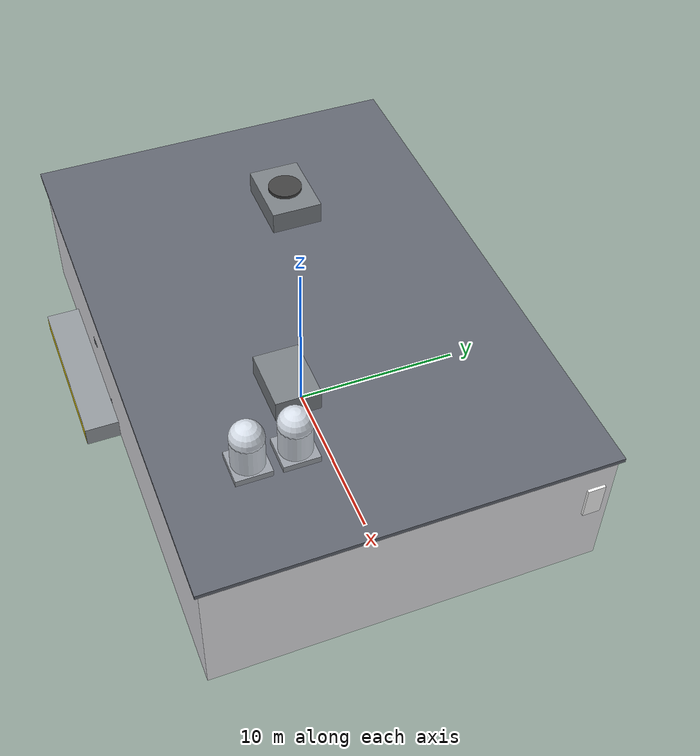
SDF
<?xml version="1.0" ?>
<sdf version="1.8">
  <model name="px_mart_store">
    <static>true</static>
    <link name="pxmart_link">

      <!-- ==================== 物理碰撞剛體 (Decoupled Primitives) ==================== -->
      <!-- 主建物量體剛體 (32m x 22m x 8.0m) -->
      <collision name="building_col">
        <pose>0 0 4.0 0 0 0</pose>
        <geometry><box><size>32.0 22.0 8.0</size></box></geometry>
      </collision>
      <!-- 門前雨遮剛體 -->
      <collision name="canopy_col">
        <pose>0 11.8 3.5 0 0 0</pose>
        <geometry><box><size>16.0 2.2 0.3</size></box></geometry>
      </collision>
      <!-- 後方貨物裝卸月台剛體 -->
      <collision name="dock_col">
        <pose>-6.0 -11.8 0.6 0 0 0</pose>
        <geometry><box><size>10.0 2.4 1.2</size></box></geometry>
      </collision>

      <!-- ==================== 視覺主體：全聯現代雙層商場建築 ==================== -->
      <!-- 主建築白色微紋理外牆 -->
      <visual name="building_walls">
        <pose>0 0 4.0 0 0 0</pose>
        <geometry><box><size>32.0 22.0 8.0</size></box></geometry>
        <material>
          <ambient>0.88 0.88 0.90 1</ambient>
          <diffuse>0.92 0.92 0.94 1</diffuse>
        </material>
      </visual>

      <!-- 頂樓微凸的女兒牆邊緣 (Roof Parapet Cap) -->
      <visual name="roof_parapet">
        <pose>0 0 8.1 0 0 0</pose>
        <geometry><box><size>32.4 22.4 0.25</size></box></geometry>
        <material>
          <ambient>0.3 0.32 0.35 1</ambient>
          <diffuse>0.38 0.40 0.44 1</diffuse>
        </material>
      </visual>

      <!-- ==================== 全聯福利中心 台灣特色高清擬真店招與門面 (Photo-Real PBR Signboards) ==================== -->
      <!-- 1. 正面橫式發光主招牌 (Fascia Signboard: 24.0m x 2.4m, 比例 10.0:1 完全吻合 1600x160 貼圖) -->
      <visual name="pxmart_fascia_vis">
        <pose>0 11.08 5.6 0 0 0</pose>
        <geometry><box><size>24.0 0.14 2.4</size></box></geometry>
        <material>
          <diffuse>1 1 1 1</diffuse>
          <emissive>0.45 0.45 0.45 1</emissive>
          <pbr>
            <metal>
              <albedo_map>model://px_mart_store/materials/textures/pxmart_fascia_sign.png</albedo_map>
              <roughness>0.20</roughness>
              <metalness>0.05</metalness>
            </metal>
          </pbr>
        </material>
      </visual>

      <!-- 2. 超市 1F 落地採光大櫥窗與自動感應玻璃門 (Supermarket Glass Curtain) -->
      <visual name="pxmart_entrance_glass">
        <pose>0 11.04 1.7 0 0 0</pose>
        <geometry><box><size>20.0 0.08 3.4</size></box></geometry>
        <material>
          <ambient>0.2 0.32 0.42 0.85</ambient>
          <diffuse>0.28 0.42 0.52 0.85</diffuse>
          <specular>0.9 0.95 1.0 1</specular>
        </material>
      </visual>

      <!-- 3. 側懸垂直雙面發光店招 (Protruding Blade Signboard: 1.0m x 2.0m, 比例 1:2 完全吻合 512x1024 貼圖) -->
      <visual name="pxmart_blade_sign">
        <pose>16.08 10.0 5.2 0 0 1.5708</pose>
        <geometry><box><size>1.0 0.16 2.0</size></box></geometry>
        <material>
          <diffuse>1 1 1 1</diffuse>
          <emissive>0.50 0.50 0.50 1</emissive>
          <pbr>
            <metal>
              <albedo_map>model://px_mart_store/materials/textures/pxmart_blade_sign.png</albedo_map>
              <roughness>0.20</roughness>
              <metalness>0.05</metalness>
            </metal>
          </pbr>
        </material>
      </visual>

      <!-- 挑出式深灰色進口懸挑雨遮 (Steel Entrance Canopy: 16m x 2.2m) -->
      <visual name="entrance_canopy">
        <pose>0 11.8 3.5 0 0 0</pose>
        <geometry><box><size>16.0 2.2 0.25</size></box></geometry>
        <material>
          <ambient>0.25 0.26 0.28 1</ambient>
          <diffuse>0.30 0.32 0.34 1</diffuse>
        </material>
      </visual>

      <!-- 雨遮支撐不銹鋼拉桿 (Tension Rods) -->
      <visual name="canopy_rod_1"><pose>-6.5 11.4 4.3 0 0.45 0</pose><geometry><cylinder><radius>0.03</radius><length>1.8</length></cylinder></geometry><material><ambient>0.7 0.7 0.75 1</ambient><diffuse>0.85 0.85 0.9 1</diffuse></material></visual>
      <visual name="canopy_rod_2"><pose>6.5 11.4 4.3 0 -0.45 0</pose><geometry><cylinder><radius>0.03</radius><length>1.8</length></cylinder></geometry><material><ambient>0.7 0.7 0.75 1</ambient><diffuse>0.85 0.85 0.9 1</diffuse></material></visual>

      <!-- ==================== 門前不銹鋼手推車收納專區 (Shopping Cart Corral) ==================== -->
      <visual name="cart_shelter_roof">
        <pose>10.5 12.2 2.2 0 0 0</pose>
        <geometry><box><size>5.0 2.0 0.1</size></box></geometry>
        <material><ambient>0.3 0.32 0.35 1</ambient><diffuse>0.38 0.40 0.45 1</diffuse></material>
      </visual>
      <visual name="cart_shelter_post1"><pose>8.2 11.4 1.1 0 0 0</pose><geometry><cylinder><radius>0.04</radius><length>2.2</length></cylinder></geometry><material><ambient>0.7 0.7 0.75 1</ambient><diffuse>0.85 0.85 0.9 1</diffuse></material></visual>
      <visual name="cart_shelter_post2"><pose>12.8 11.4 1.1 0 0 0</pose><geometry><cylinder><radius>0.04</radius><length>2.2</length></cylinder></geometry><material><ambient>0.7 0.7 0.75 1</ambient><diffuse>0.85 0.85 0.9 1</diffuse></material></visual>
      <visual name="cart_shelter_post3"><pose>8.2 13.0 1.1 0 0 0</pose><geometry><cylinder><radius>0.04</radius><length>2.2</length></cylinder></geometry><material><ambient>0.7 0.7 0.75 1</ambient><diffuse>0.85 0.85 0.9 1</diffuse></material></visual>
      <visual name="cart_shelter_post4"><pose>12.8 13.0 1.1 0 0 0</pose><geometry><cylinder><radius>0.04</radius><length>2.2</length></cylinder></geometry><material><ambient>0.7 0.7 0.75 1</ambient><diffuse>0.85 0.85 0.9 1</diffuse></material></visual>
      <!-- 排列整齊的購物手推車排 (Nested Carts) -->
      <visual name="px_carts_row1">
        <pose>10.5 11.9 0.45 0 0 0</pose>
        <geometry><box><size>4.2 0.45 0.75</size></box></geometry>
        <material><ambient>0.6 0.62 0.65 1</ambient><diffuse>0.75 0.78 0.8 1</diffuse></material>
      </visual>
      <visual name="px_carts_row1_handles">
        <pose>10.5 11.9 0.85 0 0 0</pose>
        <geometry><box><size>4.2 0.08 0.05</size></box></geometry>
        <material><ambient>0.85 0.1 0.1 1</ambient><diffuse>0.95 0.12 0.12 1</diffuse></material>
      </visual>
      <visual name="px_carts_row2">
        <pose>10.5 12.5 0.45 0 0 0</pose>
        <geometry><box><size>4.2 0.45 0.75</size></box></geometry>
        <material><ambient>0.6 0.62 0.65 1</ambient><diffuse>0.75 0.78 0.8 1</diffuse></material>
      </visual>
      <visual name="px_carts_row2_handles">
        <pose>10.5 12.5 0.85 0 0 0</pose>
        <geometry><box><size>4.2 0.08 0.05</size></box></geometry>
        <material><ambient>0.85 0.1 0.1 1</ambient><diffuse>0.95 0.12 0.12 1</diffuse></material>
      </visual>

      <!-- ==================== 門前不銹鋼防撞立柱 (Stainless Bollards) ==================== -->
      <visual name="bollard_1"><pose>-3.0 12.5 0.45 0 0 0</pose><geometry><cylinder><radius>0.08</radius><length>0.9</length></cylinder></geometry><material><ambient>0.7 0.7 0.75 1</ambient><diffuse>0.85 0.85 0.9 1</diffuse></material></visual>
      <visual name="bollard_2"><pose>-1.0 12.5 0.45 0 0 0</pose><geometry><cylinder><radius>0.08</radius><length>0.9</length></cylinder></geometry><material><ambient>0.7 0.7 0.75 1</ambient><diffuse>0.85 0.85 0.9 1</diffuse></material></visual>
      <visual name="bollard_3"><pose>1.0 12.5 0.45 0 0 0</pose><geometry><cylinder><radius>0.08</radius><length>0.9</length></cylinder></geometry><material><ambient>0.7 0.7 0.75 1</ambient><diffuse>0.85 0.85 0.9 1</diffuse></material></visual>
      <visual name="bollard_4"><pose>3.0 12.5 0.45 0 0 0</pose><geometry><cylinder><radius>0.08</radius><length>0.9</length></cylinder></geometry><material><ambient>0.7 0.7 0.75 1</ambient><diffuse>0.85 0.85 0.9 1</diffuse></material></visual>

      <!-- ==================== 後方生鮮與乾貨進貨卸貨專區 (Logistics Dock) ==================== -->
      <!-- 混凝土高架裝卸平台 (Dock Platform) -->
      <visual name="dock_platform">
        <pose>-6.0 -11.8 0.6 0 0 0</pose>
        <geometry><box><size>10.0 2.4 1.2</size></box></geometry>
        <material><ambient>0.5 0.52 0.55 1</ambient><diffuse>0.58 0.60 0.62 1</diffuse></material>
      </visual>
      <!-- 防撞黑黃斜紋警示邊 (Hazard Striping) -->
      <visual name="dock_edge_hazard">
        <pose>-6.0 -12.98 0.6 0 0 0</pose>
        <geometry><box><size>9.8 0.05 1.1</size></box></geometry>
        <material><ambient>0.9 0.8 0.05 1</ambient><diffuse>0.95 0.85 0.08 1</diffuse></material>
      </visual>
      <!-- 金屬工業電動捲門 (Roll-up Shutter Doors: 2 樘進貨門) -->
      <visual name="dock_shutter_1">
        <pose>-8.0 -10.95 2.5 0 0 0</pose>
        <geometry><box><size>3.2 0.1 3.0</size></box></geometry>
        <material><ambient>0.3 0.32 0.35 1</ambient><diffuse>0.36 0.38 0.42 1</diffuse></material>
      </visual>
      <visual name="dock_shutter_2">
        <pose>-4.0 -10.95 2.5 0 0 0</pose>
        <geometry><box><size>3.2 0.1 3.0</size></box></geometry>
        <material><ambient>0.3 0.32 0.35 1</ambient><diffuse>0.36 0.38 0.42 1</diffuse></material>
      </visual>

      <!-- ==================== 屋頂空調冷卻水塔與通風設備 (Rooftop HVAC) ==================== -->
      <visual name="hvac_unit_1">
        <pose>-8.0 2.0 8.8 0 0 0</pose>
        <geometry><box><size>4.2 3.0 1.5</size></box></geometry>
        <material><ambient>0.4 0.42 0.45 1</ambient><diffuse>0.48 0.50 0.52 1</diffuse></material>
      </visual>
      <visual name="hvac_fan_1">
        <pose>-8.0 2.0 9.6 0 0 0</pose>
        <geometry><cylinder><radius>1.0</radius><length>0.3</length></cylinder></geometry>
        <material><ambient>0.2 0.2 0.2 1</ambient><diffuse>0.25 0.25 0.25 1</diffuse></material>
      </visual>
      <visual name="hvac_unit_2">
        <pose>6.0 -3.0 8.8 0 0 0</pose>
        <geometry><box><size>3.5 2.5 1.4</size></box></geometry>
        <material><ambient>0.4 0.42 0.45 1</ambient><diffuse>0.48 0.50 0.52 1</diffuse></material>
      </visual>

      <!-- ==================== 台灣特色：頂樓雙聯不鏽鋼白鐵水塔 (Twin Stainless Steel Water Tanks) ==================== -->
      <visual name="water_tank_1_stand">
        <pose>10.0 -4.0 8.4 0 0 0</pose>
        <geometry><box><size>2.0 2.0 0.4</size></box></geometry>
        <material><ambient>0.5 0.52 0.55 1</ambient><diffuse>0.6 0.62 0.65 1</diffuse></material>
      </visual>
      <visual name="water_tank_1_body">
        <pose>10.0 -4.0 9.5 0 0 0</pose>
        <geometry><cylinder><radius>0.9</radius><length>1.8</length></cylinder></geometry>
        <material>
          <ambient>0.75 0.78 0.82 1</ambient>
          <diffuse>0.85 0.88 0.92 1</diffuse>
          <pbr><metal><roughness>0.15</roughness><metalness>0.9</metalness></metal></pbr>
        </material>
      </visual>
      <visual name="water_tank_1_dome">
        <pose>10.0 -4.0 10.45 0 0 0</pose>
        <geometry><sphere><radius>0.92</radius></sphere></geometry>
        <material>
          <ambient>0.75 0.78 0.82 1</ambient>
          <diffuse>0.85 0.88 0.92 1</diffuse>
          <pbr><metal><roughness>0.15</roughness><metalness>0.9</metalness></metal></pbr>
        </material>
      </visual>

      <visual name="water_tank_2_stand">
        <pose>10.0 -6.5 8.4 0 0 0</pose>
        <geometry><box><size>2.0 2.0 0.4</size></box></geometry>
        <material><ambient>0.5 0.52 0.55 1</ambient><diffuse>0.6 0.62 0.65 1</diffuse></material>
      </visual>
      <visual name="water_tank_2_body">
        <pose>10.0 -6.5 9.5 0 0 0</pose>
        <geometry><cylinder><radius>0.9</radius><length>1.8</length></cylinder></geometry>
        <material>
          <ambient>0.75 0.78 0.82 1</ambient>
          <diffuse>0.85 0.88 0.92 1</diffuse>
          <pbr><metal><roughness>0.15</roughness><metalness>0.9</metalness></metal></pbr>
        </material>
      </visual>
      <visual name="water_tank_2_dome">
        <pose>10.0 -6.5 10.45 0 0 0</pose>
        <geometry><sphere><radius>0.92</radius></sphere></geometry>
        <material>
          <ambient>0.75 0.78 0.82 1</ambient>
          <diffuse>0.85 0.88 0.92 1</diffuse>
          <pbr><metal><roughness>0.15</roughness><metalness>0.9</metalness></metal></pbr>
        </material>
      </visual>
    </link>
  </model>
</sdf>
